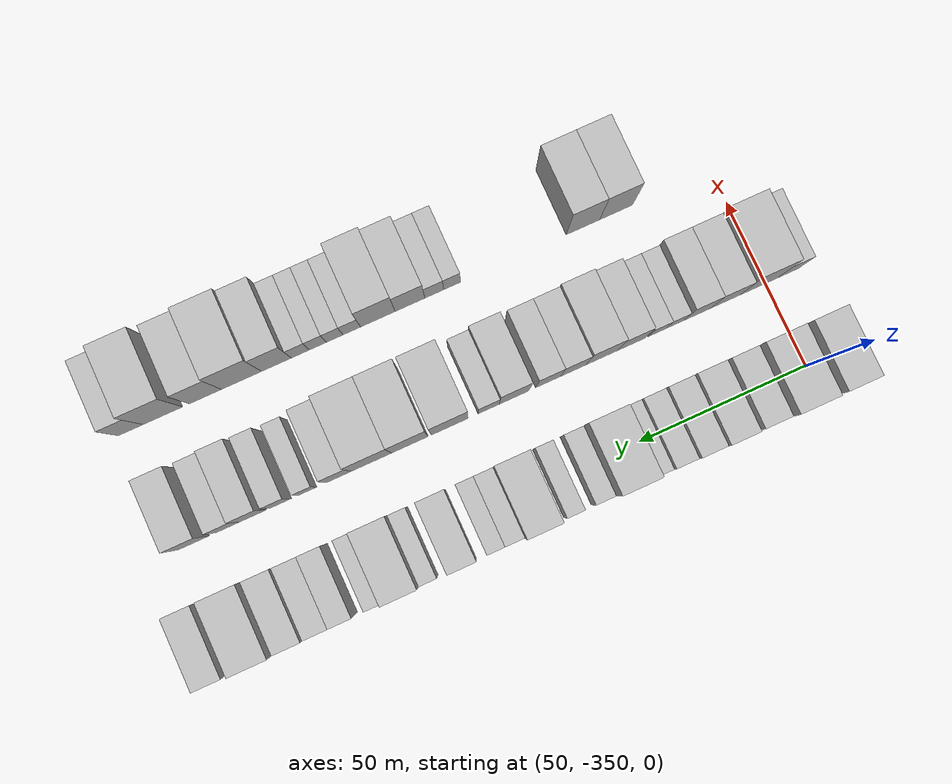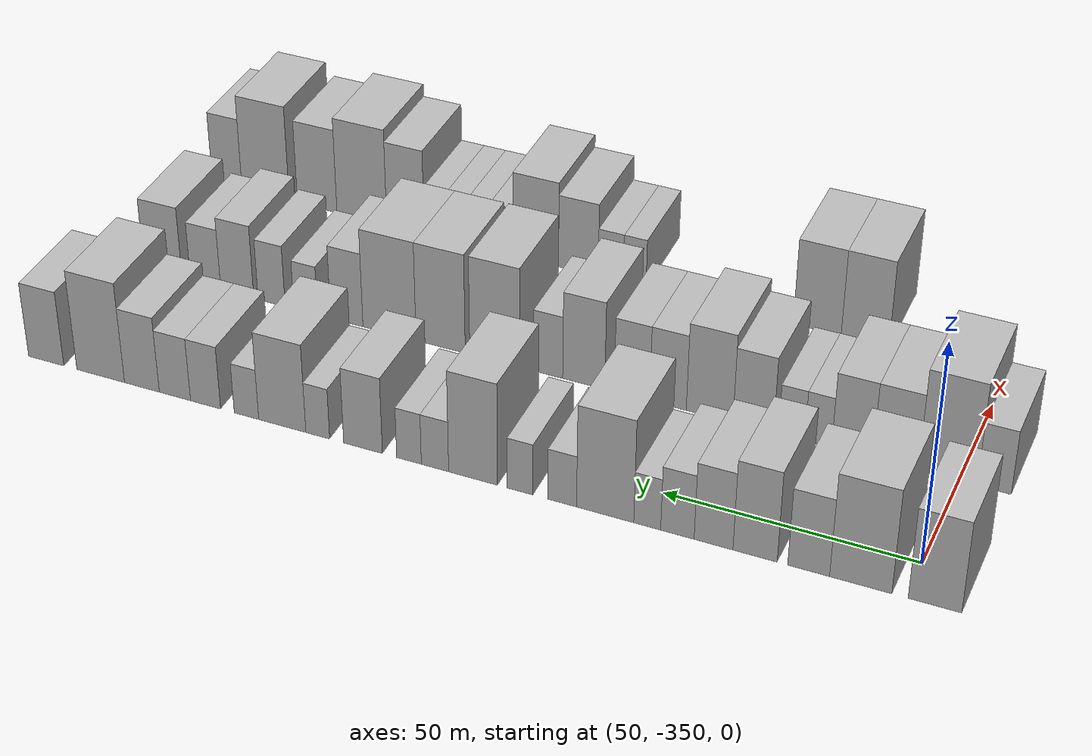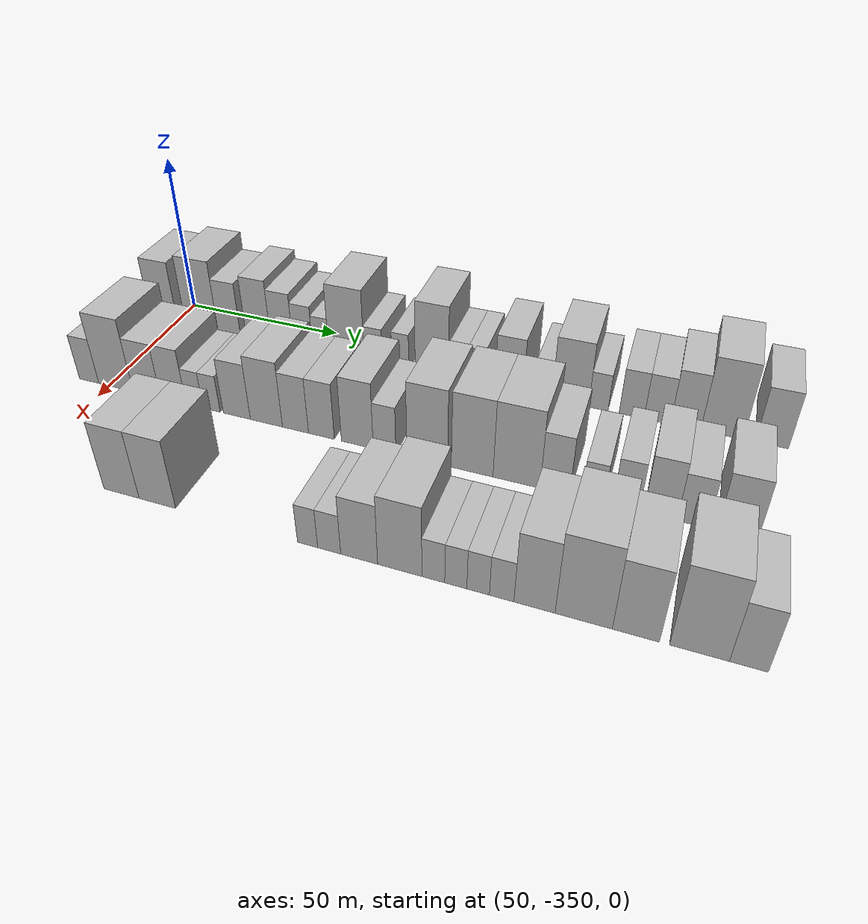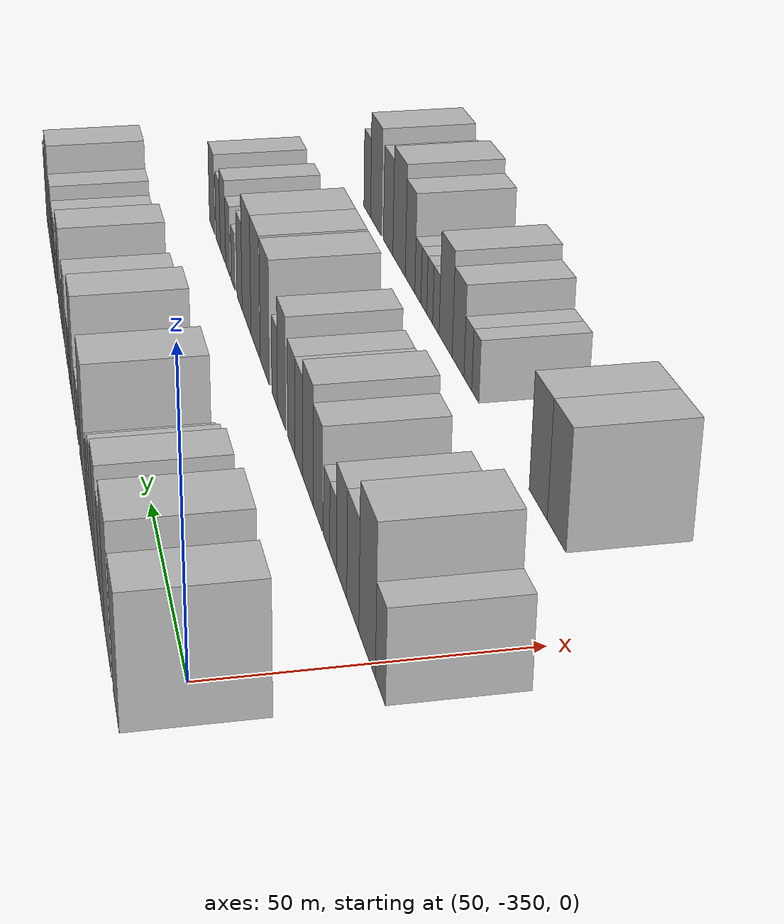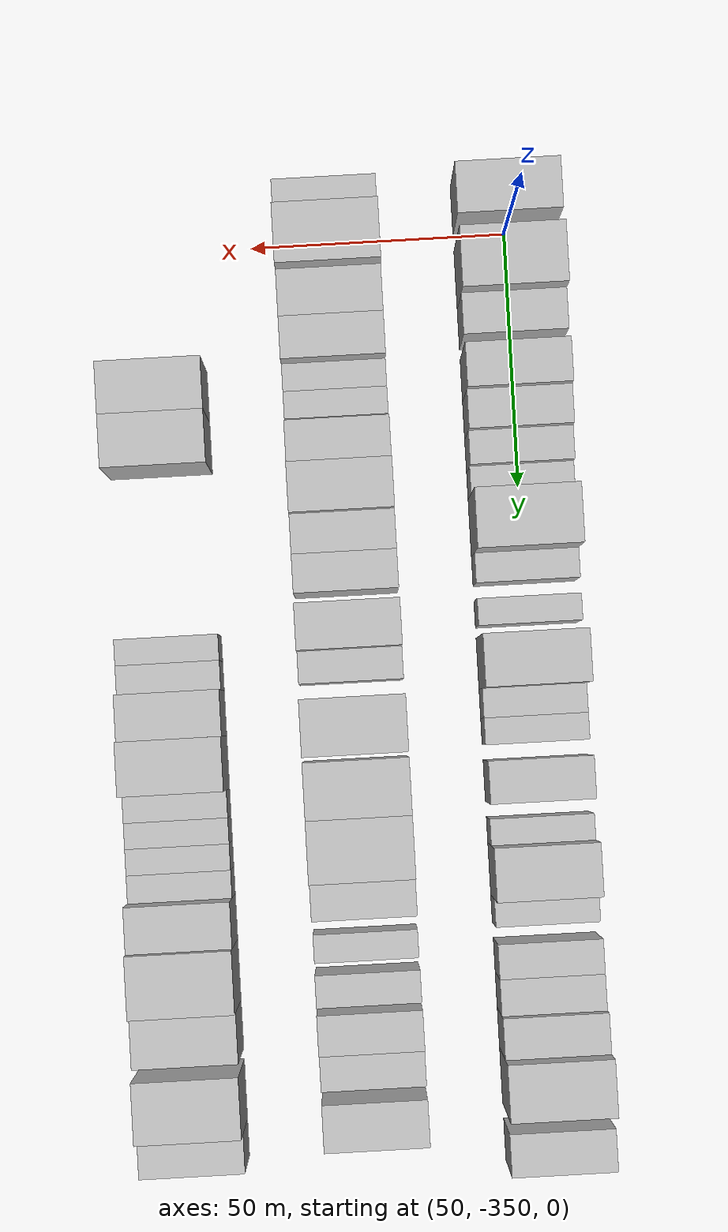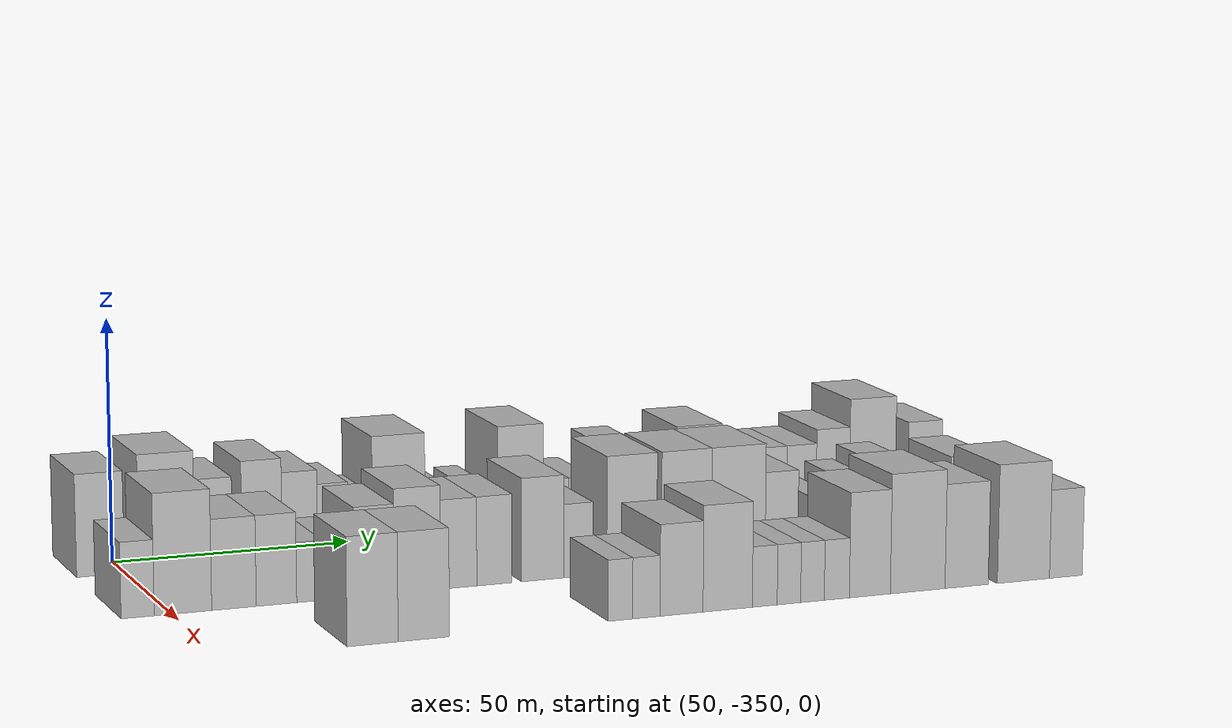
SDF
<sdf version="1.6">
 <world name="default">
  <model name="building_1">
   <static>1</static>
   <pose>50.0000 -355.1001 0 0.000000 0.000000 0.000000</pose>
   <link name="link">
    <pose>0 0 10.50 0 0 0</pose>
    <collision name="collision"><geometry><box><size>20.0000 9.7997 21.0000</size></box></geometry></collision>
    <visual name="visual">
     <cast_shadows>0</cast_shadows>
     <geometry><box><size>20.0000 9.7997 21.0000</size></box></geometry>
     <material>
      <script>
       <uri>model://HANNAS_wall/materials/scripts</uri>
       <uri>model://HANNAS_wall/materials/textures</uri>
       <name>vrc/HANNAS_wall</name>
      </script>
     </material>
    </visual>
   </link>
  </model>
  <model name="building_2">
   <static>1</static>
   <pose>50.0000 -341.4045 0 0.000000 0.000000 0.000000</pose>
   <link name="link">
    <pose>0 0 12.00 0 0 0</pose>
    <collision name="collision"><geometry><box><size>20.0000 11.5914 24.0000</size></box></geometry></collision>
    <visual name="visual">
     <cast_shadows>0</cast_shadows>
     <geometry><box><size>20.0000 11.5914 24.0000</size></box></geometry>
     <material>
      <script>
       <uri>model://HANNAS_wall/materials/scripts</uri>
       <uri>model://HANNAS_wall/materials/textures</uri>
       <name>vrc/HANNAS_wall</name>
      </script>
     </material>
    </visual>
   </link>
  </model>
  <model name="building_3">
   <static>1</static>
   <pose>50.0000 -331.6680 0 0.000000 0.000000 0.000000</pose>
   <link name="link">
    <pose>0 0 9.00 0 0 0</pose>
    <collision name="collision"><geometry><box><size>20.0000 7.8818 18.0000</size></box></geometry></collision>
    <visual name="visual">
     <cast_shadows>0</cast_shadows>
     <geometry><box><size>20.0000 7.8818 18.0000</size></box></geometry>
     <material>
      <script>
       <uri>model://HANNAS_wall/materials/scripts</uri>
       <uri>model://HANNAS_wall/materials/textures</uri>
       <name>vrc/HANNAS_wall</name>
      </script>
     </material>
    </visual>
   </link>
  </model>
  <model name="building_4">
   <static>1</static>
   <pose>50.0000 -321.4947 0 0.000000 0.000000 0.000000</pose>
   <link name="link">
    <pose>0 0 10.50 0 0 0</pose>
    <collision name="collision"><geometry><box><size>20.0000 8.4648 21.0000</size></box></geometry></collision>
    <visual name="visual">
     <cast_shadows>0</cast_shadows>
     <geometry><box><size>20.0000 8.4648 21.0000</size></box></geometry>
     <material>
      <script>
       <uri>model://HANNAS_wall/materials/scripts</uri>
       <uri>model://HANNAS_wall/materials/textures</uri>
       <name>vrc/HANNAS_wall</name>
      </script>
     </material>
    </visual>
   </link>
  </model>
  <model name="building_5">
   <static>1</static>
   <pose>50.0000 -313.5152 0 0.000000 0.000000 0.000000</pose>
   <link name="link">
    <pose>0 0 9.00 0 0 0</pose>
    <collision name="collision"><geometry><box><size>20.0000 7.4942 18.0000</size></box></geometry></collision>
    <visual name="visual">
     <cast_shadows>0</cast_shadows>
     <geometry><box><size>20.0000 7.4942 18.0000</size></box></geometry>
     <material>
      <script>
       <uri>model://HANNAS_wall/materials/scripts</uri>
       <uri>model://HANNAS_wall/materials/textures</uri>
       <name>vrc/HANNAS_wall</name>
      </script>
     </material>
    </visual>
   </link>
  </model>
  <model name="building_6">
   <static>1</static>
   <pose>50.0000 -306.5093 0 0.000000 0.000000 0.000000</pose>
   <link name="link">
    <pose>0 0 7.50 0 0 0</pose>
    <collision name="collision"><geometry><box><size>20.0000 6.5176 15.0000</size></box></geometry></collision>
    <visual name="visual">
     <cast_shadows>0</cast_shadows>
     <geometry><box><size>20.0000 6.5176 15.0000</size></box></geometry>
     <material>
      <script>
       <uri>model://HANNAS_wall/materials/scripts</uri>
       <uri>model://HANNAS_wall/materials/textures</uri>
       <name>vrc/HANNAS_wall</name>
      </script>
     </material>
    </visual>
   </link>
  </model>
  <model name="building_7">
   <static>1</static>
   <pose>50.0000 -300.6045 0 0.000000 0.000000 0.000000</pose>
   <link name="link">
    <pose>0 0 6.00 0 0 0</pose>
    <collision name="collision"><geometry><box><size>20.0000 5.2920 12.0000</size></box></geometry></collision>
    <visual name="visual">
     <cast_shadows>0</cast_shadows>
     <geometry><box><size>20.0000 5.2920 12.0000</size></box></geometry>
     <material>
      <script>
       <uri>model://HANNAS_wall/materials/scripts</uri>
       <uri>model://HANNAS_wall/materials/textures</uri>
       <name>vrc/HANNAS_wall</name>
      </script>
     </material>
    </visual>
   </link>
  </model>
  <model name="building_8">
   <static>1</static>
   <pose>50.0000 -292.2646 0 0.000000 0.000000 0.000000</pose>
   <link name="link">
    <pose>0 0 12.00 0 0 0</pose>
    <collision name="collision"><geometry><box><size>20.0000 11.3878 24.0000</size></box></geometry></collision>
    <visual name="visual">
     <cast_shadows>0</cast_shadows>
     <geometry><box><size>20.0000 11.3878 24.0000</size></box></geometry>
     <material>
      <script>
       <uri>model://HANNAS_wall/materials/scripts</uri>
       <uri>model://HANNAS_wall/materials/textures</uri>
       <name>vrc/HANNAS_wall</name>
      </script>
     </material>
    </visual>
   </link>
  </model>
  <model name="building_9">
   <static>1</static>
   <pose>50.0000 -283.6906 0 0.000000 0.000000 0.000000</pose>
   <link name="link">
    <pose>0 0 6.00 0 0 0</pose>
    <collision name="collision"><geometry><box><size>20.0000 5.7602 12.0000</size></box></geometry></collision>
    <visual name="visual">
     <cast_shadows>0</cast_shadows>
     <geometry><box><size>20.0000 5.7602 12.0000</size></box></geometry>
     <material>
      <script>
       <uri>model://HANNAS_wall/materials/scripts</uri>
       <uri>model://HANNAS_wall/materials/textures</uri>
       <name>vrc/HANNAS_wall</name>
      </script>
     </material>
    </visual>
   </link>
  </model>
  <model name="building_10">
   <static>1</static>
   <pose>50.0000 -275.2085 0 0.000000 0.000000 0.000000</pose>
   <link name="link">
    <pose>0 0 6.00 0 0 0</pose>
    <collision name="collision"><geometry><box><size>20.0000 5.2040 12.0000</size></box></geometry></collision>
    <visual name="visual">
     <cast_shadows>0</cast_shadows>
     <geometry><box><size>20.0000 5.2040 12.0000</size></box></geometry>
     <material>
      <script>
       <uri>model://HANNAS_wall/materials/scripts</uri>
       <uri>model://HANNAS_wall/materials/textures</uri>
       <name>vrc/HANNAS_wall</name>
      </script>
     </material>
    </visual>
   </link>
  </model>
  <model name="building_11">
   <static>1</static>
   <pose>50.0000 -265.5791 0 0.000000 0.000000 0.000000</pose>
   <link name="link">
    <pose>0 0 12.00 0 0 0</pose>
    <collision name="collision"><geometry><box><size>20.0000 10.0548 24.0000</size></box></geometry></collision>
    <visual name="visual">
     <cast_shadows>0</cast_shadows>
     <geometry><box><size>20.0000 10.0548 24.0000</size></box></geometry>
     <material>
      <script>
       <uri>model://HANNAS_wall/materials/scripts</uri>
       <uri>model://HANNAS_wall/materials/textures</uri>
       <name>vrc/HANNAS_wall</name>
      </script>
     </material>
    </visual>
   </link>
  </model>
  <model name="building_12">
   <static>1</static>
   <pose>50.0000 -257.7121 0 0.000000 0.000000 0.000000</pose>
   <link name="link">
    <pose>0 0 6.00 0 0 0</pose>
    <collision name="collision"><geometry><box><size>20.0000 5.6793 12.0000</size></box></geometry></collision>
    <visual name="visual">
     <cast_shadows>0</cast_shadows>
     <geometry><box><size>20.0000 5.6793 12.0000</size></box></geometry>
     <material>
      <script>
       <uri>model://HANNAS_wall/materials/scripts</uri>
       <uri>model://HANNAS_wall/materials/textures</uri>
       <name>vrc/HANNAS_wall</name>
      </script>
     </material>
    </visual>
   </link>
  </model>
  <model name="building_13">
   <static>1</static>
   <pose>50.0000 -252.2907 0 0.000000 0.000000 0.000000</pose>
   <link name="link">
    <pose>0 0 6.00 0 0 0</pose>
    <collision name="collision"><geometry><box><size>20.0000 5.1635 12.0000</size></box></geometry></collision>
    <visual name="visual">
     <cast_shadows>0</cast_shadows>
     <geometry><box><size>20.0000 5.1635 12.0000</size></box></geometry>
     <material>
      <script>
       <uri>model://HANNAS_wall/materials/scripts</uri>
       <uri>model://HANNAS_wall/materials/textures</uri>
       <name>vrc/HANNAS_wall</name>
      </script>
     </material>
    </visual>
   </link>
  </model>
  <model name="building_14">
   <static>1</static>
   <pose>50.0000 -242.6086 0 0.000000 0.000000 0.000000</pose>
   <link name="link">
    <pose>0 0 9.00 0 0 0</pose>
    <collision name="collision"><geometry><box><size>20.0000 8.2007 18.0000</size></box></geometry></collision>
    <visual name="visual">
     <cast_shadows>0</cast_shadows>
     <geometry><box><size>20.0000 8.2007 18.0000</size></box></geometry>
     <material>
      <script>
       <uri>model://HANNAS_wall/materials/scripts</uri>
       <uri>model://HANNAS_wall/materials/textures</uri>
       <name>vrc/HANNAS_wall</name>
      </script>
     </material>
    </visual>
   </link>
  </model>
  <model name="building_15">
   <static>1</static>
   <pose>50.0000 -232.9550 0 0.000000 0.000000 0.000000</pose>
   <link name="link">
    <pose>0 0 6.00 0 0 0</pose>
    <collision name="collision"><geometry><box><size>20.0000 5.1066 12.0000</size></box></geometry></collision>
    <visual name="visual">
     <cast_shadows>0</cast_shadows>
     <geometry><box><size>20.0000 5.1066 12.0000</size></box></geometry>
     <material>
      <script>
       <uri>model://HANNAS_wall/materials/scripts</uri>
       <uri>model://HANNAS_wall/materials/textures</uri>
       <name>vrc/HANNAS_wall</name>
      </script>
     </material>
    </visual>
   </link>
  </model>
  <model name="building_16">
   <static>1</static>
   <pose>50.0000 -225.2877 0 0.000000 0.000000 0.000000</pose>
   <link name="link">
    <pose>0 0 10.50 0 0 0</pose>
    <collision name="collision"><geometry><box><size>20.0000 10.2279 21.0000</size></box></geometry></collision>
    <visual name="visual">
     <cast_shadows>0</cast_shadows>
     <geometry><box><size>20.0000 10.2279 21.0000</size></box></geometry>
     <material>
      <script>
       <uri>model://HANNAS_wall/materials/scripts</uri>
       <uri>model://HANNAS_wall/materials/textures</uri>
       <name>vrc/HANNAS_wall</name>
      </script>
     </material>
    </visual>
   </link>
  </model>
  <model name="building_17">
   <static>1</static>
   <pose>50.0000 -217.4994 0 0.000000 0.000000 0.000000</pose>
   <link name="link">
    <pose>0 0 6.00 0 0 0</pose>
    <collision name="collision"><geometry><box><size>20.0000 5.3487 12.0000</size></box></geometry></collision>
    <visual name="visual">
     <cast_shadows>0</cast_shadows>
     <geometry><box><size>20.0000 5.3487 12.0000</size></box></geometry>
     <material>
      <script>
       <uri>model://HANNAS_wall/materials/scripts</uri>
       <uri>model://HANNAS_wall/materials/textures</uri>
       <name>vrc/HANNAS_wall</name>
      </script>
     </material>
    </visual>
   </link>
  </model>
  <model name="building_18">
   <static>1</static>
   <pose>50.0000 -208.4923 0 0.000000 0.000000 0.000000</pose>
   <link name="link">
    <pose>0 0 7.50 0 0 0</pose>
    <collision name="collision"><geometry><box><size>20.0000 6.6655 15.0000</size></box></geometry></collision>
    <visual name="visual">
     <cast_shadows>0</cast_shadows>
     <geometry><box><size>20.0000 6.6655 15.0000</size></box></geometry>
     <material>
      <script>
       <uri>model://HANNAS_wall/materials/scripts</uri>
       <uri>model://HANNAS_wall/materials/textures</uri>
       <name>vrc/HANNAS_wall</name>
      </script>
     </material>
    </visual>
   </link>
  </model>
  <model name="building_19">
   <static>1</static>
   <pose>50.0000 -201.6772 0 0.000000 0.000000 0.000000</pose>
   <link name="link">
    <pose>0 0 7.50 0 0 0</pose>
    <collision name="collision"><geometry><box><size>20.0000 6.9646 15.0000</size></box></geometry></collision>
    <visual name="visual">
     <cast_shadows>0</cast_shadows>
     <geometry><box><size>20.0000 6.9646 15.0000</size></box></geometry>
     <material>
      <script>
       <uri>model://HANNAS_wall/materials/scripts</uri>
       <uri>model://HANNAS_wall/materials/textures</uri>
       <name>vrc/HANNAS_wall</name>
      </script>
     </material>
    </visual>
   </link>
  </model>
  <model name="building_20">
   <static>1</static>
   <pose>50.0000 -194.2766 0 0.000000 0.000000 0.000000</pose>
   <link name="link">
    <pose>0 0 9.00 0 0 0</pose>
    <collision name="collision"><geometry><box><size>20.0000 7.8367 18.0000</size></box></geometry></collision>
    <visual name="visual">
     <cast_shadows>0</cast_shadows>
     <geometry><box><size>20.0000 7.8367 18.0000</size></box></geometry>
     <material>
      <script>
       <uri>model://HANNAS_wall/materials/scripts</uri>
       <uri>model://HANNAS_wall/materials/textures</uri>
       <name>vrc/HANNAS_wall</name>
      </script>
     </material>
    </visual>
   </link>
  </model>
  <model name="building_21">
   <static>1</static>
   <pose>50.0000 -184.9264 0 0.000000 0.000000 0.000000</pose>
   <link name="link">
    <pose>0 0 12.00 0 0 0</pose>
    <collision name="collision"><geometry><box><size>20.0000 10.8636 24.0000</size></box></geometry></collision>
    <visual name="visual">
     <cast_shadows>0</cast_shadows>
     <geometry><box><size>20.0000 10.8636 24.0000</size></box></geometry>
     <material>
      <script>
       <uri>model://HANNAS_wall/materials/scripts</uri>
       <uri>model://HANNAS_wall/materials/textures</uri>
       <name>vrc/HANNAS_wall</name>
      </script>
     </material>
    </visual>
   </link>
  </model>
  <model name="building_22">
   <static>1</static>
   <pose>50.0000 -172.4275 0 0.000000 0.000000 0.000000</pose>
   <link name="link">
    <pose>0 0 9.00 0 0 0</pose>
    <collision name="collision"><geometry><box><size>20.0000 8.1343 18.0000</size></box></geometry></collision>
    <visual name="visual">
     <cast_shadows>0</cast_shadows>
     <geometry><box><size>20.0000 8.1343 18.0000</size></box></geometry>
     <material>
      <script>
       <uri>model://HANNAS_wall/materials/scripts</uri>
       <uri>model://HANNAS_wall/materials/textures</uri>
       <name>vrc/HANNAS_wall</name>
      </script>
     </material>
    </visual>
   </link>
  </model>
  <model name="building_79">
   <static>1</static>
   <pose>85.0000 -356.7279 0 0.000000 0.000000 0.000000</pose>
   <link name="link">
    <pose>0 0 7.50 0 0 0</pose>
    <collision name="collision"><geometry><box><size>20.0000 6.5443 15.0000</size></box></geometry></collision>
    <visual name="visual">
     <cast_shadows>0</cast_shadows>
     <geometry><box><size>20.0000 6.5443 15.0000</size></box></geometry>
     <material>
      <script>
       <uri>model://HANNAS_wall/materials/scripts</uri>
       <uri>model://HANNAS_wall/materials/textures</uri>
       <name>vrc/HANNAS_wall</name>
      </script>
     </material>
    </visual>
   </link>
  </model>
  <model name="building_80">
   <static>1</static>
   <pose>85.0000 -347.7599 0 0.000000 0.000000 0.000000</pose>
   <link name="link">
    <pose>0 0 12.00 0 0 0</pose>
    <collision name="collision"><geometry><box><size>20.0000 11.3915 24.0000</size></box></geometry></collision>
    <visual name="visual">
     <cast_shadows>0</cast_shadows>
     <geometry><box><size>20.0000 11.3915 24.0000</size></box></geometry>
     <material>
      <script>
       <uri>model://HANNAS_wall/materials/scripts</uri>
       <uri>model://HANNAS_wall/materials/textures</uri>
       <name>vrc/HANNAS_wall</name>
      </script>
     </material>
    </visual>
   </link>
  </model>
  <model name="building_81">
   <static>1</static>
   <pose>85.0000 -337.5976 0 0.000000 0.000000 0.000000</pose>
   <link name="link">
    <pose>0 0 9.00 0 0 0</pose>
    <collision name="collision"><geometry><box><size>20.0000 8.9333 18.0000</size></box></geometry></collision>
    <visual name="visual">
     <cast_shadows>0</cast_shadows>
     <geometry><box><size>20.0000 8.9333 18.0000</size></box></geometry>
     <material>
      <script>
       <uri>model://HANNAS_wall/materials/scripts</uri>
       <uri>model://HANNAS_wall/materials/textures</uri>
       <name>vrc/HANNAS_wall</name>
      </script>
     </material>
    </visual>
   </link>
  </model>
  <model name="building_82">
   <static>1</static>
   <pose>85.0000 -329.0489 0 0.000000 0.000000 0.000000</pose>
   <link name="link">
    <pose>0 0 9.00 0 0 0</pose>
    <collision name="collision"><geometry><box><size>20.0000 8.1641 18.0000</size></box></geometry></collision>
    <visual name="visual">
     <cast_shadows>0</cast_shadows>
     <geometry><box><size>20.0000 8.1641 18.0000</size></box></geometry>
     <material>
      <script>
       <uri>model://HANNAS_wall/materials/scripts</uri>
       <uri>model://HANNAS_wall/materials/textures</uri>
       <name>vrc/HANNAS_wall</name>
      </script>
     </material>
    </visual>
   </link>
  </model>
  <model name="building_83">
   <static>1</static>
   <pose>85.0000 -322.2898 0 0.000000 0.000000 0.000000</pose>
   <link name="link">
    <pose>0 0 6.00 0 0 0</pose>
    <collision name="collision"><geometry><box><size>20.0000 5.3541 12.0000</size></box></geometry></collision>
    <visual name="visual">
     <cast_shadows>0</cast_shadows>
     <geometry><box><size>20.0000 5.3541 12.0000</size></box></geometry>
     <material>
      <script>
       <uri>model://HANNAS_wall/materials/scripts</uri>
       <uri>model://HANNAS_wall/materials/textures</uri>
       <name>vrc/HANNAS_wall</name>
      </script>
     </material>
    </visual>
   </link>
  </model>
  <model name="building_84">
   <static>1</static>
   <pose>85.0000 -316.9596 0 0.000000 0.000000 0.000000</pose>
   <link name="link">
    <pose>0 0 6.00 0 0 0</pose>
    <collision name="collision"><geometry><box><size>20.0000 5.3062 12.0000</size></box></geometry></collision>
    <visual name="visual">
     <cast_shadows>0</cast_shadows>
     <geometry><box><size>20.0000 5.3062 12.0000</size></box></geometry>
     <material>
      <script>
       <uri>model://HANNAS_wall/materials/scripts</uri>
       <uri>model://HANNAS_wall/materials/textures</uri>
       <name>vrc/HANNAS_wall</name>
      </script>
     </material>
    </visual>
   </link>
  </model>
  <model name="building_85">
   <static>1</static>
   <pose>85.0000 -309.1875 0 0.000000 0.000000 0.000000</pose>
   <link name="link">
    <pose>0 0 9.00 0 0 0</pose>
    <collision name="collision"><geometry><box><size>20.0000 8.2381 18.0000</size></box></geometry></collision>
    <visual name="visual">
     <cast_shadows>0</cast_shadows>
     <geometry><box><size>20.0000 8.2381 18.0000</size></box></geometry>
     <material>
      <script>
       <uri>model://HANNAS_wall/materials/scripts</uri>
       <uri>model://HANNAS_wall/materials/textures</uri>
       <name>vrc/HANNAS_wall</name>
      </script>
     </material>
    </visual>
   </link>
  </model>
  <model name="building_86">
   <static>1</static>
   <pose>85.0000 -300.2663 0 0.000000 0.000000 0.000000</pose>
   <link name="link">
    <pose>0 0 10.50 0 0 0</pose>
    <collision name="collision"><geometry><box><size>20.0000 9.6042 21.0000</size></box></geometry></collision>
    <visual name="visual">
     <cast_shadows>0</cast_shadows>
     <geometry><box><size>20.0000 9.6042 21.0000</size></box></geometry>
     <material>
      <script>
       <uri>model://HANNAS_wall/materials/scripts</uri>
       <uri>model://HANNAS_wall/materials/textures</uri>
       <name>vrc/HANNAS_wall</name>
      </script>
     </material>
    </visual>
   </link>
  </model>
  <model name="building_87">
   <static>1</static>
   <pose>85.0000 -291.6504 0 0.000000 0.000000 0.000000</pose>
   <link name="link">
    <pose>0 0 9.00 0 0 0</pose>
    <collision name="collision"><geometry><box><size>20.0000 7.6277 18.0000</size></box></geometry></collision>
    <visual name="visual">
     <cast_shadows>0</cast_shadows>
     <geometry><box><size>20.0000 7.6277 18.0000</size></box></geometry>
     <material>
      <script>
       <uri>model://HANNAS_wall/materials/scripts</uri>
       <uri>model://HANNAS_wall/materials/textures</uri>
       <name>vrc/HANNAS_wall</name>
      </script>
     </material>
    </visual>
   </link>
  </model>
  <model name="building_88">
   <static>1</static>
   <pose>85.0000 -284.1190 0 0.000000 0.000000 0.000000</pose>
   <link name="link">
    <pose>0 0 9.00 0 0 0</pose>
    <collision name="collision"><geometry><box><size>20.0000 7.4351 18.0000</size></box></geometry></collision>
    <visual name="visual">
     <cast_shadows>0</cast_shadows>
     <geometry><box><size>20.0000 7.4351 18.0000</size></box></geometry>
     <material>
      <script>
       <uri>model://HANNAS_wall/materials/scripts</uri>
       <uri>model://HANNAS_wall/materials/textures</uri>
       <name>vrc/HANNAS_wall</name>
      </script>
     </material>
    </visual>
   </link>
  </model>
  <model name="building_89">
   <static>1</static>
   <pose>85.0000 -273.9315 0 0.000000 0.000000 0.000000</pose>
   <link name="link">
    <pose>0 0 10.50 0 0 0</pose>
    <collision name="collision"><geometry><box><size>20.0000 8.9399 21.0000</size></box></geometry></collision>
    <visual name="visual">
     <cast_shadows>0</cast_shadows>
     <geometry><box><size>20.0000 8.9399 21.0000</size></box></geometry>
     <material>
      <script>
       <uri>model://HANNAS_wall/materials/scripts</uri>
       <uri>model://HANNAS_wall/materials/textures</uri>
       <name>vrc/HANNAS_wall</name>
      </script>
     </material>
    </visual>
   </link>
  </model>
  <model name="building_90">
   <static>1</static>
   <pose>85.0000 -266.3416 0 0.000000 0.000000 0.000000</pose>
   <link name="link">
    <pose>0 0 7.50 0 0 0</pose>
    <collision name="collision"><geometry><box><size>20.0000 6.2399 15.0000</size></box></geometry></collision>
    <visual name="visual">
     <cast_shadows>0</cast_shadows>
     <geometry><box><size>20.0000 6.2399 15.0000</size></box></geometry>
     <material>
      <script>
       <uri>model://HANNAS_wall/materials/scripts</uri>
       <uri>model://HANNAS_wall/materials/textures</uri>
       <name>vrc/HANNAS_wall</name>
      </script>
     </material>
    </visual>
   </link>
  </model>
  <model name="building_91">
   <static>1</static>
   <pose>85.0000 -254.7988 0 0.000000 0.000000 0.000000</pose>
   <link name="link">
    <pose>0 0 12.00 0 0 0</pose>
    <collision name="collision"><geometry><box><size>20.0000 10.8456 24.0000</size></box></geometry></collision>
    <visual name="visual">
     <cast_shadows>0</cast_shadows>
     <geometry><box><size>20.0000 10.8456 24.0000</size></box></geometry>
     <material>
      <script>
       <uri>model://HANNAS_wall/materials/scripts</uri>
       <uri>model://HANNAS_wall/materials/textures</uri>
       <name>vrc/HANNAS_wall</name>
      </script>
     </material>
    </visual>
   </link>
  </model>
  <model name="building_92">
   <static>1</static>
   <pose>85.0000 -242.9496 0 0.000000 0.000000 0.000000</pose>
   <link name="link">
    <pose>0 0 12.00 0 0 0</pose>
    <collision name="collision"><geometry><box><size>20.0000 10.8530 24.0000</size></box></geometry></collision>
    <visual name="visual">
     <cast_shadows>0</cast_shadows>
     <geometry><box><size>20.0000 10.8530 24.0000</size></box></geometry>
     <material>
      <script>
       <uri>model://HANNAS_wall/materials/scripts</uri>
       <uri>model://HANNAS_wall/materials/textures</uri>
       <name>vrc/HANNAS_wall</name>
      </script>
     </material>
    </visual>
   </link>
  </model>
  <model name="building_93">
   <static>1</static>
   <pose>85.0000 -231.5745 0 0.000000 0.000000 0.000000</pose>
   <link name="link">
    <pose>0 0 12.00 0 0 0</pose>
    <collision name="collision"><geometry><box><size>20.0000 11.8972 24.0000</size></box></geometry></collision>
    <visual name="visual">
     <cast_shadows>0</cast_shadows>
     <geometry><box><size>20.0000 11.8972 24.0000</size></box></geometry>
     <material>
      <script>
       <uri>model://HANNAS_wall/materials/scripts</uri>
       <uri>model://HANNAS_wall/materials/textures</uri>
       <name>vrc/HANNAS_wall</name>
      </script>
     </material>
    </visual>
   </link>
  </model>
  <model name="building_94">
   <static>1</static>
   <pose>85.0000 -221.9803 0 0.000000 0.000000 0.000000</pose>
   <link name="link">
    <pose>0 0 9.00 0 0 0</pose>
    <collision name="collision"><geometry><box><size>20.0000 7.2912 18.0000</size></box></geometry></collision>
    <visual name="visual">
     <cast_shadows>0</cast_shadows>
     <geometry><box><size>20.0000 7.2912 18.0000</size></box></geometry>
     <material>
      <script>
       <uri>model://HANNAS_wall/materials/scripts</uri>
       <uri>model://HANNAS_wall/materials/textures</uri>
       <name>vrc/HANNAS_wall</name>
      </script>
     </material>
    </visual>
   </link>
  </model>
  <model name="building_95">
   <static>1</static>
   <pose>85.0000 -212.6142 0 0.000000 0.000000 0.000000</pose>
   <link name="link">
    <pose>0 0 6.00 0 0 0</pose>
    <collision name="collision"><geometry><box><size>20.0000 5.4410 12.0000</size></box></geometry></collision>
    <visual name="visual">
     <cast_shadows>0</cast_shadows>
     <geometry><box><size>20.0000 5.4410 12.0000</size></box></geometry>
     <material>
      <script>
       <uri>model://HANNAS_wall/materials/scripts</uri>
       <uri>model://HANNAS_wall/materials/textures</uri>
       <name>vrc/HANNAS_wall</name>
      </script>
     </material>
    </visual>
   </link>
  </model>
  <model name="building_96">
   <static>1</static>
   <pose>85.0000 -204.7763 0 0.000000 0.000000 0.000000</pose>
   <link name="link">
    <pose>0 0 7.50 0 0 0</pose>
    <collision name="collision"><geometry><box><size>20.0000 6.2348 15.0000</size></box></geometry></collision>
    <visual name="visual">
     <cast_shadows>0</cast_shadows>
     <geometry><box><size>20.0000 6.2348 15.0000</size></box></geometry>
     <material>
      <script>
       <uri>model://HANNAS_wall/materials/scripts</uri>
       <uri>model://HANNAS_wall/materials/textures</uri>
       <name>vrc/HANNAS_wall</name>
      </script>
     </material>
    </visual>
   </link>
  </model>
  <model name="building_97">
   <static>1</static>
   <pose>85.0000 -196.8011 0 0.000000 0.000000 0.000000</pose>
   <link name="link">
    <pose>0 0 9.00 0 0 0</pose>
    <collision name="collision"><geometry><box><size>20.0000 7.7154 18.0000</size></box></geometry></collision>
    <visual name="visual">
     <cast_shadows>0</cast_shadows>
     <geometry><box><size>20.0000 7.7154 18.0000</size></box></geometry>
     <material>
      <script>
       <uri>model://HANNAS_wall/materials/scripts</uri>
       <uri>model://HANNAS_wall/materials/textures</uri>
       <name>vrc/HANNAS_wall</name>
      </script>
     </material>
    </visual>
   </link>
  </model>
  <model name="building_98">
   <static>1</static>
   <pose>85.0000 -189.4048 0 0.000000 0.000000 0.000000</pose>
   <link name="link">
    <pose>0 0 7.50 0 0 0</pose>
    <collision name="collision"><geometry><box><size>20.0000 7.0772 15.0000</size></box></geometry></collision>
    <visual name="visual">
     <cast_shadows>0</cast_shadows>
     <geometry><box><size>20.0000 7.0772 15.0000</size></box></geometry>
     <material>
      <script>
       <uri>model://HANNAS_wall/materials/scripts</uri>
       <uri>model://HANNAS_wall/materials/textures</uri>
       <name>vrc/HANNAS_wall</name>
      </script>
     </material>
    </visual>
   </link>
  </model>
  <model name="building_99">
   <static>1</static>
   <pose>85.0000 -179.3719 0 0.000000 0.000000 0.000000</pose>
   <link name="link">
    <pose>0 0 9.00 0 0 0</pose>
    <collision name="collision"><geometry><box><size>20.0000 8.9885 18.0000</size></box></geometry></collision>
    <visual name="visual">
     <cast_shadows>0</cast_shadows>
     <geometry><box><size>20.0000 8.9885 18.0000</size></box></geometry>
     <material>
      <script>
       <uri>model://HANNAS_wall/materials/scripts</uri>
       <uri>model://HANNAS_wall/materials/textures</uri>
       <name>vrc/HANNAS_wall</name>
      </script>
     </material>
    </visual>
   </link>
  </model>
  <model name="building_157">
   <static>1</static>
   <pose>120.0000 -320.9892 0 0.000000 0.000000 0.000000</pose>
   <link name="link">
    <pose>0 0 10.50 0 0 0</pose>
    <collision name="collision"><geometry><box><size>20.0000 10.0072 21.0000</size></box></geometry></collision>
    <visual name="visual">
     <cast_shadows>0</cast_shadows>
     <geometry><box><size>20.0000 10.0072 21.0000</size></box></geometry>
     <material>
      <script>
       <uri>model://HANNAS_wall/materials/scripts</uri>
       <uri>model://HANNAS_wall/materials/textures</uri>
       <name>vrc/HANNAS_wall</name>
      </script>
     </material>
    </visual>
   </link>
  </model>
  <model name="building_158">
   <static>1</static>
   <pose>120.0000 -310.9097 0 0.000000 0.000000 0.000000</pose>
   <link name="link">
    <pose>0 0 10.50 0 0 0</pose>
    <collision name="collision"><geometry><box><size>20.0000 10.1517 21.0000</size></box></geometry></collision>
    <visual name="visual">
     <cast_shadows>0</cast_shadows>
     <geometry><box><size>20.0000 10.1517 21.0000</size></box></geometry>
     <material>
      <script>
       <uri>model://HANNAS_wall/materials/scripts</uri>
       <uri>model://HANNAS_wall/materials/textures</uri>
       <name>vrc/HANNAS_wall</name>
      </script>
     </material>
    </visual>
   </link>
  </model>
  <model name="building_159">
   <static>1</static>
   <pose>120.0000 -271.2828 0 0.000000 0.000000 0.000000</pose>
   <link name="link">
    <pose>0 0 6.00 0 0 0</pose>
    <collision name="collision"><geometry><box><size>20.0000 5.0341 12.0000</size></box></geometry></collision>
    <visual name="visual">
     <cast_shadows>0</cast_shadows>
     <geometry><box><size>20.0000 5.0341 12.0000</size></box></geometry>
     <material>
      <script>
       <uri>model://HANNAS_wall/materials/scripts</uri>
       <uri>model://HANNAS_wall/materials/textures</uri>
       <name>vrc/HANNAS_wall</name>
      </script>
     </material>
    </visual>
   </link>
  </model>
  <model name="building_160">
   <static>1</static>
   <pose>120.0000 -265.9365 0 0.000000 0.000000 0.000000</pose>
   <link name="link">
    <pose>0 0 6.00 0 0 0</pose>
    <collision name="collision"><geometry><box><size>20.0000 5.6585 12.0000</size></box></geometry></collision>
    <visual name="visual">
     <cast_shadows>0</cast_shadows>
     <geometry><box><size>20.0000 5.6585 12.0000</size></box></geometry>
     <material>
      <script>
       <uri>model://HANNAS_wall/materials/scripts</uri>
       <uri>model://HANNAS_wall/materials/textures</uri>
       <name>vrc/HANNAS_wall</name>
      </script>
     </material>
    </visual>
   </link>
  </model>
  <model name="building_161">
   <static>1</static>
   <pose>120.0000 -258.6471 0 0.000000 0.000000 0.000000</pose>
   <link name="link">
    <pose>0 0 9.00 0 0 0</pose>
    <collision name="collision"><geometry><box><size>20.0000 8.9204 18.0000</size></box></geometry></collision>
    <visual name="visual">
     <cast_shadows>0</cast_shadows>
     <geometry><box><size>20.0000 8.9204 18.0000</size></box></geometry>
     <material>
      <script>
       <uri>model://HANNAS_wall/materials/scripts</uri>
       <uri>model://HANNAS_wall/materials/textures</uri>
       <name>vrc/HANNAS_wall</name>
      </script>
     </material>
    </visual>
   </link>
  </model>
  <model name="building_162">
   <static>1</static>
   <pose>120.0000 -249.0109 0 0.000000 0.000000 0.000000</pose>
   <link name="link">
    <pose>0 0 10.50 0 0 0</pose>
    <collision name="collision"><geometry><box><size>20.0000 10.3518 21.0000</size></box></geometry></collision>
    <visual name="visual">
     <cast_shadows>0</cast_shadows>
     <geometry><box><size>20.0000 10.3518 21.0000</size></box></geometry>
     <material>
      <script>
       <uri>model://HANNAS_wall/materials/scripts</uri>
       <uri>model://HANNAS_wall/materials/textures</uri>
       <name>vrc/HANNAS_wall</name>
      </script>
     </material>
    </visual>
   </link>
  </model>
  <model name="building_163">
   <static>1</static>
   <pose>120.0000 -241.2088 0 0.000000 0.000000 0.000000</pose>
   <link name="link">
    <pose>0 0 6.00 0 0 0</pose>
    <collision name="collision"><geometry><box><size>20.0000 5.2524 12.0000</size></box></geometry></collision>
    <visual name="visual">
     <cast_shadows>0</cast_shadows>
     <geometry><box><size>20.0000 5.2524 12.0000</size></box></geometry>
     <material>
      <script>
       <uri>model://HANNAS_wall/materials/scripts</uri>
       <uri>model://HANNAS_wall/materials/textures</uri>
       <name>vrc/HANNAS_wall</name>
      </script>
     </material>
    </visual>
   </link>
  </model>
  <model name="building_164">
   <static>1</static>
   <pose>120.0000 -236.0904 0 0.000000 0.000000 0.000000</pose>
   <link name="link">
    <pose>0 0 6.00 0 0 0</pose>
    <collision name="collision"><geometry><box><size>20.0000 4.9843 12.0000</size></box></geometry></collision>
    <visual name="visual">
     <cast_shadows>0</cast_shadows>
     <geometry><box><size>20.0000 4.9843 12.0000</size></box></geometry>
     <material>
      <script>
       <uri>model://HANNAS_wall/materials/scripts</uri>
       <uri>model://HANNAS_wall/materials/textures</uri>
       <name>vrc/HANNAS_wall</name>
      </script>
     </material>
    </visual>
   </link>
  </model>
  <model name="building_165">
   <static>1</static>
   <pose>120.0000 -231.0765 0 0.000000 0.000000 0.000000</pose>
   <link name="link">
    <pose>0 0 6.00 0 0 0</pose>
    <collision name="collision"><geometry><box><size>20.0000 5.0435 12.0000</size></box></geometry></collision>
    <visual name="visual">
     <cast_shadows>0</cast_shadows>
     <geometry><box><size>20.0000 5.0435 12.0000</size></box></geometry>
     <material>
      <script>
       <uri>model://HANNAS_wall/materials/scripts</uri>
       <uri>model://HANNAS_wall/materials/textures</uri>
       <name>vrc/HANNAS_wall</name>
      </script>
     </material>
    </visual>
   </link>
  </model>
  <model name="building_166">
   <static>1</static>
   <pose>120.0000 -225.8709 0 0.000000 0.000000 0.000000</pose>
   <link name="link">
    <pose>0 0 6.00 0 0 0</pose>
    <collision name="collision"><geometry><box><size>20.0000 5.3679 12.0000</size></box></geometry></collision>
    <visual name="visual">
     <cast_shadows>0</cast_shadows>
     <geometry><box><size>20.0000 5.3679 12.0000</size></box></geometry>
     <material>
      <script>
       <uri>model://HANNAS_wall/materials/scripts</uri>
       <uri>model://HANNAS_wall/materials/textures</uri>
       <name>vrc/HANNAS_wall</name>
      </script>
     </material>
    </visual>
   </link>
  </model>
  <model name="building_167">
   <static>1</static>
   <pose>120.0000 -218.7616 0 0.000000 0.000000 0.000000</pose>
   <link name="link">
    <pose>0 0 10.50 0 0 0</pose>
    <collision name="collision"><geometry><box><size>20.0000 8.8507 21.0000</size></box></geometry></collision>
    <visual name="visual">
     <cast_shadows>0</cast_shadows>
     <geometry><box><size>20.0000 8.8507 21.0000</size></box></geometry>
     <material>
      <script>
       <uri>model://HANNAS_wall/materials/scripts</uri>
       <uri>model://HANNAS_wall/materials/textures</uri>
       <name>vrc/HANNAS_wall</name>
      </script>
     </material>
    </visual>
   </link>
  </model>
  <model name="building_168">
   <static>1</static>
   <pose>120.0000 -208.3798 0 0.000000 0.000000 0.000000</pose>
   <link name="link">
    <pose>0 0 12.00 0 0 0</pose>
    <collision name="collision"><geometry><box><size>20.0000 11.9129 24.0000</size></box></geometry></collision>
    <visual name="visual">
     <cast_shadows>0</cast_shadows>
     <geometry><box><size>20.0000 11.9129 24.0000</size></box></geometry>
     <material>
      <script>
       <uri>model://HANNAS_wall/materials/scripts</uri>
       <uri>model://HANNAS_wall/materials/textures</uri>
       <name>vrc/HANNAS_wall</name>
      </script>
     </material>
    </visual>
   </link>
  </model>
  <model name="building_169">
   <static>1</static>
   <pose>120.0000 -197.6551 0 0.000000 0.000000 0.000000</pose>
   <link name="link">
    <pose>0 0 10.50 0 0 0</pose>
    <collision name="collision"><geometry><box><size>20.0000 9.5364 21.0000</size></box></geometry></collision>
    <visual name="visual">
     <cast_shadows>0</cast_shadows>
     <geometry><box><size>20.0000 9.5364 21.0000</size></box></geometry>
     <material>
      <script>
       <uri>model://HANNAS_wall/materials/scripts</uri>
       <uri>model://HANNAS_wall/materials/textures</uri>
       <name>vrc/HANNAS_wall</name>
      </script>
     </material>
    </visual>
   </link>
  </model>
  <model name="building_170">
   <static>1</static>
   <pose>120.0000 -185.0829 0 0.000000 0.000000 0.000000</pose>
   <link name="link">
    <pose>0 0 12.00 0 0 0</pose>
    <collision name="collision"><geometry><box><size>20.0000 11.6080 24.0000</size></box></geometry></collision>
    <visual name="visual">
     <cast_shadows>0</cast_shadows>
     <geometry><box><size>20.0000 11.6080 24.0000</size></box></geometry>
     <material>
      <script>
       <uri>model://HANNAS_wall/materials/scripts</uri>
       <uri>model://HANNAS_wall/materials/textures</uri>
       <name>vrc/HANNAS_wall</name>
      </script>
     </material>
    </visual>
   </link>
  </model>
  <model name="building_171">
   <static>1</static>
   <pose>120.0000 -175.6101 0 0.000000 0.000000 0.000000</pose>
   <link name="link">
    <pose>0 0 9.00 0 0 0</pose>
    <collision name="collision"><geometry><box><size>20.0000 7.3375 18.0000</size></box></geometry></collision>
    <visual name="visual">
     <cast_shadows>0</cast_shadows>
     <geometry><box><size>20.0000 7.3375 18.0000</size></box></geometry>
     <material>
      <script>
       <uri>model://HANNAS_wall/materials/scripts</uri>
       <uri>model://HANNAS_wall/materials/textures</uri>
       <name>vrc/HANNAS_wall</name>
      </script>
     </material>
    </visual>
   </link>
  </model>
 </world>
</sdf>
